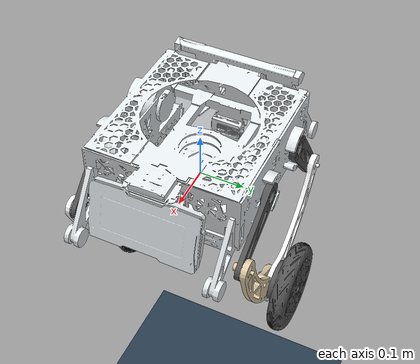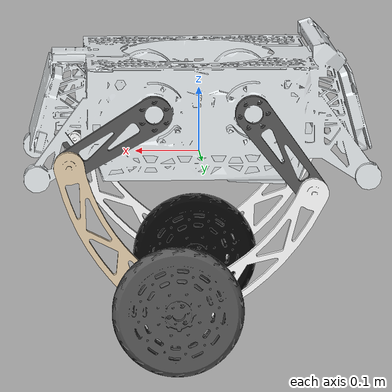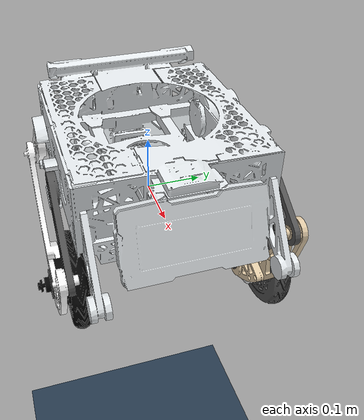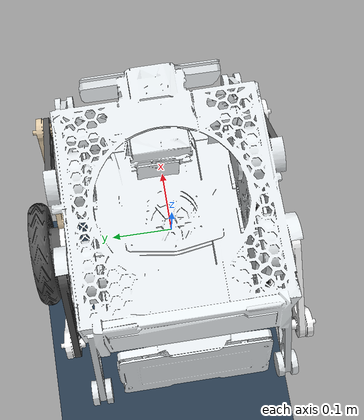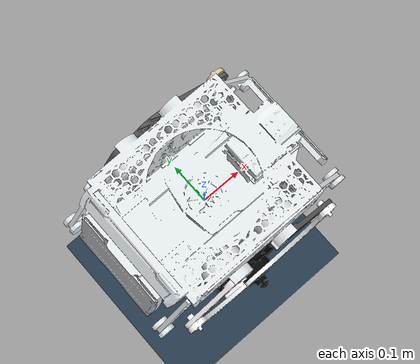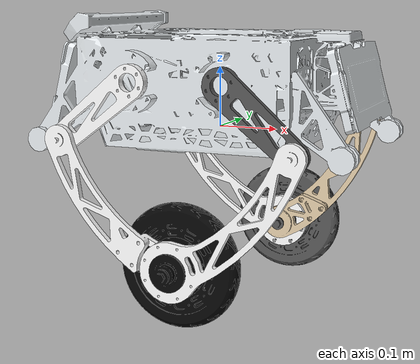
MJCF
<mujoco model="wheel_leg_rb">
    <compiler angle="radian" meshdir="/home/qingziyi/model_urdf/wheel_leg_rb/meshes/" />
    <size njmax="500" nconmax="100" />

    <!--默认参数配置-->
    <default>
        <position ctrllimited="true" ctrlrange="-3.14 3.14" forcelimited="true" forcerange="-10 10" kp="10" />
    </default>

    <asset>
        <!--平衡车模型-->
        <mesh name="base_link" file="base_link.STL" />
        <mesh name="left_hipL_link" file="left_hipL_link.STL" />
        <mesh name="left_kneelL_link" file="left_kneelL_link.STL" />
        <mesh name="left_wheel_link" file="left_wheel_link.STL" />
        <mesh name="left_hipR_link" file="left_hipR_link.STL" />
        <mesh name="left_kneelR_link" file="left_kneelR_link.STL" />
        <mesh name="right_hipL_link" file="right_hipL_link.STL" />
        <mesh name="right_kneelL_link" file="right_kneelL_link.STL" />
        <mesh name="right_hipR_link" file="right_hipR_link.STL" />
        <mesh name="right_kneelR_link" file="right_kneelR_link.STL" />
        <mesh name="right_wheel_link" file="right_wheel_link.STL" />

        <!--环境模型-->
        <texture type="skybox" builtin="gradient" rgb1="0.3 0.5 0.7" rgb2="0 0 0" width="512" height="512" />
        <texture name="texplane" type="2d" builtin="checker" rgb1=".2 .3 .4" rgb2=".1 0.15 0.2" width="512" height="512" mark="cross" markrgb=".8 .8 .8" />
        <material name="matplane" reflectance="0.3" texture="texplane" texrepeat="1 1" texuniform="true" />

    </asset>
    <worldbody>
        <!--车体-->
        <body name="base_link" pos="0.002349 0.00052826 0.0293">
            <inertial pos="0.002349 0.00052826 0.0293" quat="0.000305464 0.706844 4.63542e-05 0.70737" mass="6.967" diaginertia="0.029032 0.020157 0.018058" />
            <geom type="mesh" contype="0" conaffinity="0" group="1" rgba="0.898039 0.917647 0.929412 1" mesh="base_link" />
            <geom type="mesh" rgba="0.898039 0.917647 0.929412 1" mesh="base_link" />
            <freejoint name="body" />

            <!--左腿左关节-->
            <body name="left_hipL_link" pos="0.075163 0.18486 0.058">
                <inertial pos="0.055432 -0.00075146 -0.033127" quat="0.34674 0.61586 0.616285 0.347392" mass="0.14833" diaginertia="0.00044164 0.000404334 3.95651e-05" />
                <joint name="left_hipL_joint" pos="0 0 0" axis="0 1 0" range="-1.1 0.314" />
                <geom type="mesh" contype="0" conaffinity="0" group="1" rgba="0.33333 0.33333 0.33333 1" mesh="left_hipL_link" />
                <geom type="mesh" rgba="0.33333 0.33333 0.33333 1" mesh="left_hipL_link" />
                <body name="left_kneelL_link" pos="0.12884 0.0135 -0.076809">
                    <inertial pos="-0.07826 -0.008148 -0.13121" quat="0.671423 0.198289 0.197566 0.686177" mass="0.38007" diaginertia="0.00123547 0.00112066 0.000129979" />
                    <joint name="left_kneelL_joint" pos="0 0 0" axis="0 1 0" />
                    <geom type="mesh" contype="0" conaffinity="0" group="1" rgba="0.88235 0.79608 0.65882 1" mesh="left_kneelL_link" />
                    <geom type="mesh" rgba="0.88235 0.79608 0.65882 1" mesh="left_kneelL_link" />
                    <body name="left_wheel_link" pos="-0.16236 -0.0005 -0.21573">
                        <inertial pos="-0.00030304 0.035782 0.00018059" quat="0.687646 0.165798 0.165941 0.687108" mass="1.9175" diaginertia="0.009277 0.00479465 0.00476845" />
                        <joint name="left_wheel_joint" pos="0 0 0" axis="0 1 0" />
                        <geom type="mesh" contype="0" conaffinity="0" group="1" rgba="0.33333 0.33333 0.33333 1" mesh="left_wheel_link" />
                        <geom type="mesh" rgba="0.33333 0.33333 0.33333 1" mesh="left_wheel_link" />
                    </body>
                </body>
            </body>

            <!--左腿右关节-->
            <body name="left_hipR_link" pos="-0.074837 0.18486 0.058">
                <inertial pos="-0.038877 -0.00074733 -0.051295" quat="0.671072 0.223613 0.222928 0.670793" mass="0.14882" diaginertia="0.00044439 0.000406974 3.96752e-05" />
                <joint name="left_hipR_joint" pos="0 0 0" axis="0 1 0" range="0.0628 1.45" />
                <geom type="mesh" contype="0" conaffinity="0" group="1" rgba="0.33333 0.33333 0.33333 1" mesh="left_hipR_link" />
                <geom type="mesh" rgba="0.33333 0.33333 0.33333 1" mesh="left_hipR_link" />
                <body name="left_kneelR_link" pos="-0.090732 0.0135 -0.11945">
                    <inertial pos="0.10721 -0.0022722 -0.10246" quat="0.314928 0.632814 0.633821 0.314066" mass="0.3063" diaginertia="0.0029352 0.00278246 0.000165237" />
                    <joint name="left_kneelR_joint" pos="0 0 0" axis="0 1 0" />
                    <geom type="mesh" contype="0" conaffinity="0" group="1" rgba="1 1 1 1" mesh="left_kneelR_link" />
                    <geom type="mesh" rgba="1 1 1 1" mesh="left_kneelR_link" />
                </body>
            </body>

            <!--右腿左关节-->
            <body name="right_hipL_link" pos="0.075163 -0.18414 0.058">
                <inertial pos="0.049138 0.00066859 -0.0419" quat="0.294001 0.642748 0.643117 0.294686" mass="0.14833" diaginertia="0.00044164 0.000404335 3.95649e-05" />
                <joint name="right_hipL_joint" pos="0 0 0" axis="0 1 0" range="-1.25 0.188" />
                <geom type="mesh" contype="0" conaffinity="0" group="1" rgba="0.33333 0.33333 0.33333 1" mesh="right_hipL_link" />
                <geom type="mesh" rgba="0.33333 0.33333 0.33333 1" mesh="right_hipL_link" />
                <body name="right_kneelL_link" pos="0.11424 -0.0135 -0.097203">
                    <inertial pos="-0.10294 0.0016697 -0.1149" quat="0.6445 0.290148 0.289324 0.645543" mass="0.29445" diaginertia="0.0029342 0.00278194 0.000164762" />
                    <joint name="right_kneelL_joint" pos="0 0 0" axis="0 1 0" />
                    <geom type="mesh" contype="0" conaffinity="0" group="1" rgba="1 1 1 1" mesh="right_kneelL_link" />
                    <geom type="mesh" rgba="1 1 1 1" mesh="right_kneelL_link" />
                </body>
            </body>

            <!--右腿右关节-->
            <body name="right_hipR_link" pos="-0.074837 -0.18414 0.058">
                <inertial pos="-0.050507 0.00066803 -0.039895" quat="0.637473 0.306687 0.306043 0.63711" mass="0.14882" diaginertia="0.00044439 0.000406978 3.96715e-05" />
                <joint name="right_hipR_joint" pos="0 0 0" axis="0 1 0" range="-0.188 1.25" />
                <geom type="mesh" contype="0" conaffinity="0" group="1" rgba="1 1 1 1" mesh="right_hipR_link" />
                <geom type="mesh" rgba="1 1 1 1" mesh="right_hipR_link" />
                <body name="right_kneelR_link" pos="-0.11781 -0.0135 -0.092849">
                    <inertial pos="0.094546 0.008148 -0.12001" quat="0.657236 -0.242264 -0.240589 0.671912" mass="0.38007" diaginertia="0.00123547 0.00112065 0.000129982" />
                    <joint name="right_kneelR_joint" pos="0 0 0" axis="0 1 0" />
                    <geom type="mesh" contype="0" conaffinity="0" group="1" rgba="1 1 1 1" mesh="right_kneelR_link" />
                    <geom type="mesh" rgba="1 1 1 1" mesh="right_kneelR_link" />
                    <body name="right_wheel_link" pos="0.18885 0.0005 -0.19296">
                        <inertial pos="0.00020616 -0.035782 0.00028625" quat="0.30217 0.639482 0.638983 0.302419" mass="1.9175" diaginertia="0.009277 0.00479463 0.00476847" />
                        <joint name="right_wheel_joint" pos="0 0 0" axis="0 1 0" />
                        <geom type="mesh" contype="0" conaffinity="0" group="1" rgba="0.019608 0.019608 0.019608 1" mesh="right_wheel_link" />
                        <geom type="mesh" rgba="0.019608 0.019608 0.019608 1" mesh="right_wheel_link" />
                    </body>
                </body>
            </body>
        </body>

        <!--环境-->
        <light directional="true" diffuse=".4 .4 .4" specular="0.1 0.1 0.1" pos="0 0 5.0" dir="0 0 -1" castshadow="false" />
        <light directional="true" diffuse=".6 .6 .6" specular="0.2 0.2 0.2" pos="0 0 4" dir="0 0 -1" />
        <geom name="floor" pos="0 0 -1" size="15 15 1" type="plane" material="matplane" margin="0.001" condim="3" friction="1 0.005 0.0001" />

    </worldbody>

    <!--取消模型碰撞检测-->
    <contact>
        <exclude name="coll_left" body1="left_kneelL_link" body2="left_kneelR_link" />
        <exclude name="coll_left_wheel" body1="left_wheel_link" body2="left_kneelR_link" />
        <exclude name="coll_right" body1="right_kneelR_link" body2="right_kneelL_link" />
        <exclude name="coll_right_wheel" body1="right_kneelL_link" body2="right_wheel_link" />
    </contact>

    <!--闭链-->
    <equality>
        <connect name="left_connect" body1="left_kneelL_link" body2="left_kneelR_link" anchor="-0.16236 -0.0005 -0.21573" />
        <connect name="right_connect" body1="right_kneelR_link" body2="right_kneelL_link" anchor="0.18885 0.0005 -0.19296" />
    </equality>

    <!--电机-->
    <actuator>
        <position joint="left_hipL_joint" ctrllimited="true" ctrlrange="-10 10" />
        <position joint="left_hipR_joint" ctrllimited="true" ctrlrange="-10 10" />
        <position joint="left_wheel_joint" ctrllimited="true" ctrlrange="-10 10" />
        <position joint="right_hipL_joint" ctrllimited="true" ctrlrange="-10 10" />
        <position joint="right_hipR_joint" ctrllimited="true" ctrlrange="-10 10" />
        <position joint="right_wheel_joint" ctrllimited="true" ctrlrange="-10 10" />
    </actuator>

</mujoco>
